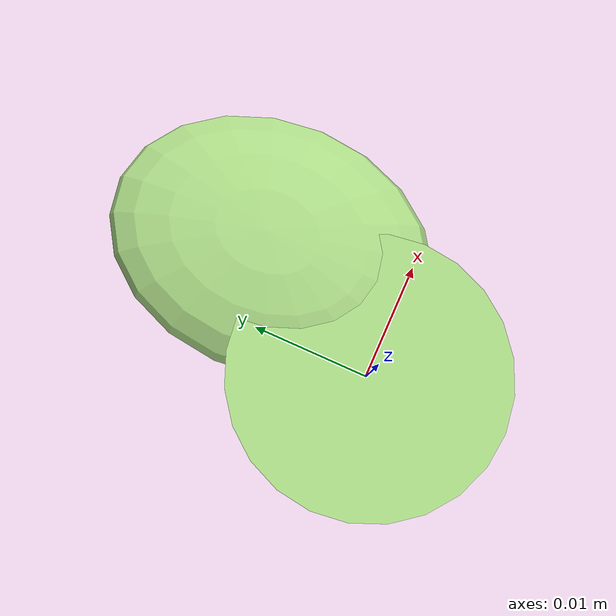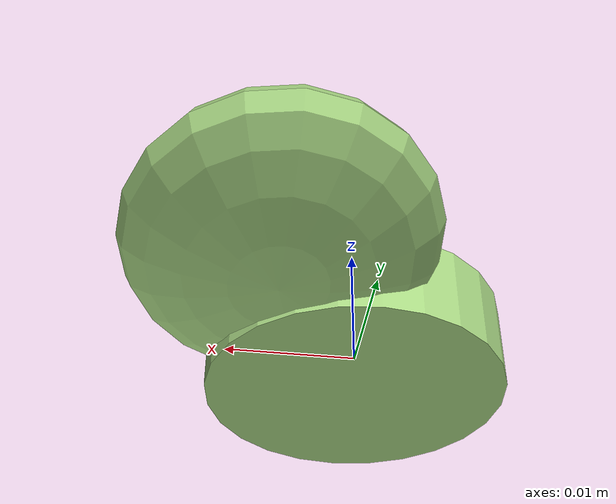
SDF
<?xml version="1.0" ?>
<!-- |    This document was autogenerated by xmacro from data/veggie_template/veggie_base.sdf.xacro  | -->
<!-- |    EDITING THIS FILE BY HAND IS NOT RECOMMENDED                                               | -->
<sdf version="1.8">
	<!-- Parameters -->
	<!-- Base -->
	<!-- Joint 0 -->
	<!-- Link 1 -->
	<!-- Joint 1 -->
	<!-- Link 2 -->
	<!-- Primitives -->
	<!-- All dimensions are half -->
	<!-- Object -->
	<model name="veggie">
		<!-- link0 -->
		<link name="link0">
			<inertial>
				<mass>0.002565370395136704</mass>
				<inertia>
					<ixx>9.083612568252915e-08</ixx>
					<ixy>0</ixy>
					<ixz>0</ixz>
					<iyy>9.083612568252915e-08</iyy>
					<iyz>0</iyz>
					<izz>1.6429461441639674e-07</izz>
				</inertia>
			</inertial>
			<visual name="link0_visual">
				<pose>0 0 0 0 0 0</pose>
				<geometry>
					<cylinder>
						<radius>0.011317529163466546</radius>
						<length>0.0063752312960309</length>
					</cylinder>
				</geometry>
				<material>
					<ambient>0.659 0.839 0.514 1</ambient>
					<diffuse>0.659 0.839 0.514 1</diffuse>
					<specular>0 0 0 0</specular>
					<emissive>0 0 0 1</emissive>
				</material>
			</visual>
			<collision name="link0_collision">
				<pose>0 0 0 0 0 0 </pose>
				<geometry>
					<cylinder>
						<radius>0.011317529163466546</radius>
						<length>0.0063752312960309</length>
					</cylinder>
				</geometry>
			</collision>
		</link>
		<!-- link1 -->
		<joint name="joint0" type="fixed">
			<pose relative_to="link0">0.006958412464148125 0.011835586607163523 0.0006003969180088191 0.0 0.0 0.0</pose>
			<parent>link0</parent>
			<child>link1</child>
		</joint>
		<link name="link1">
			<pose relative_to="joint0">0 0 0 0 0 0</pose>
			<inertial>
				<mass>0.002298924232411226</mass>
				<inertia>
					<ixx>9.763696351721126e-08</ixx>
					<ixy>0</ixy>
					<ixz>0</ixz>
					<iyy>6.034673679785288e-08</iyy>
					<iyz>0</iyz>
					<izz>1.4627633089804152e-07</izz>
				</inertia>
			</inertial>
			<visual name="link1_visual">
				<pose>0 0 0 0 0 0</pose>
				<geometry>
					<ellipsoid>
						<radii>0.010886624400080572 0.014128773311690653 0.003568102621053031</radii>
					</ellipsoid>
				</geometry>
				<material>
					<ambient>0.659 0.839 0.514 1</ambient>
					<diffuse>0.659 0.839 0.514 1</diffuse>
					<specular>0 0 0 0</specular>
					<emissive>0 0 0 1</emissive>
				</material>
			</visual>
			<collision name="link1_collision">
				<pose>0 0 0 0 0 0 </pose>
				<geometry>
					<ellipsoid>
						<radii>0.010886624400080572 0.014128773311690653 0.003568102621053031</radii>
					</ellipsoid>
				</geometry>
			</collision>
		</link>
		<!-- link2 -->
	</model>
</sdf>
